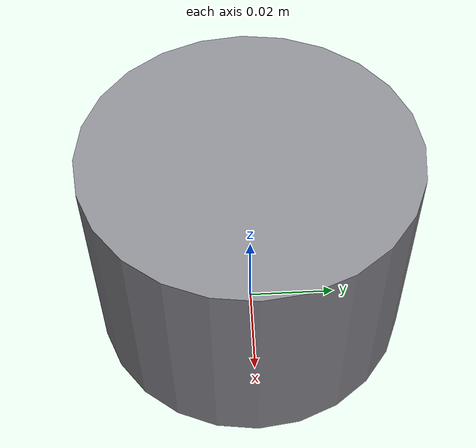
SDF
<?xml version="1.0"?>
<sdf version="1.9">
  <model name="robosub_item_bolt">
    <static>false</static>
    <plugin filename="gz-sim-label-system" name="gz::sim::systems::Label">
      <label>21</label>
    </plugin>
    <link name="body">
      <pose>0 0 0.025 0 0 0</pose>
      <inertial>
        <pose>0 0 0 0 0 0</pose>
        <mass>0.221286</mass>
        <inertia>
          <ixx>0.00011387</ixx><ixy>0</ixy><ixz>0</ixz>
          <iyy>0.00011387</iyy><iyz>0</iyz>
          <izz>0.000135538</izz>
        </inertia>
      </inertial>
      <visual name="body_visual">
        <pose>0 0 0 0 0 0</pose>
        <geometry><cylinder><radius>0.035</radius><length>0.05</length></cylinder></geometry>
        <material>
          <ambient>0.55 0.55 0.58 1</ambient>
          <diffuse>0.55 0.55 0.58 1</diffuse>
          <specular>0.14 0.14 0.14 1</specular>
          <emissive>0.1 0.1 0.1 1</emissive>
          <pbr>
            <metal>
              <albedo_map>model://robosub_textures/albedo_plastic.png</albedo_map>
              <metalness>0.0</metalness>
              <roughness_map>model://robosub_textures/rough_plastic.png</roughness_map>
              <normal_map>model://robosub_textures/norm_plastic.png</normal_map>
            </metal>
          </pbr>
        </material>
      </visual>
      <collision name="body_collision">
        <pose>0 0 0 0 0 0</pose>
        <geometry><cylinder><radius>0.035</radius><length>0.05</length></cylinder></geometry>
      </collision>
    </link>
  </model>
</sdf>
